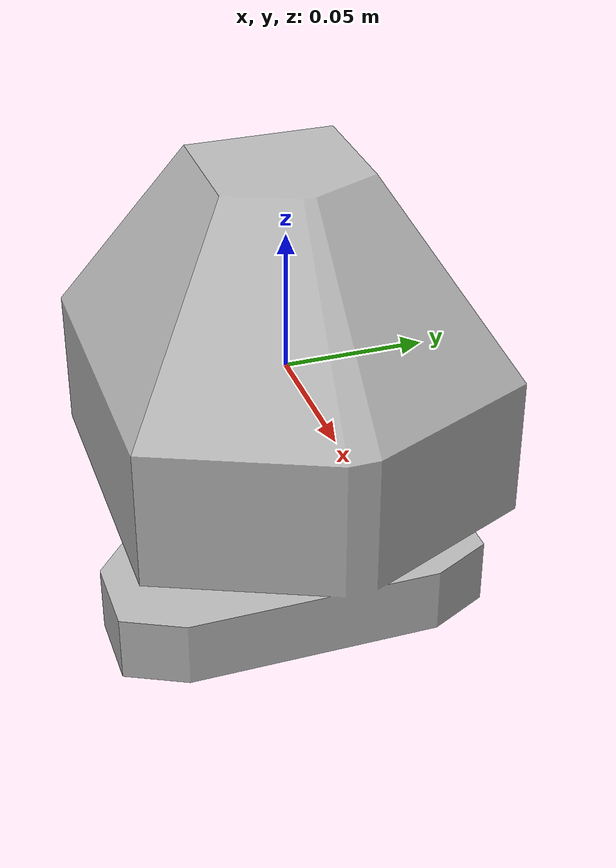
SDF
<?xml version="1.0" ?>
<sdf version="1.5">
  <model name="goomba">
    <static>true</static>
    <link name="link">
      <collision name="collision">
        <pose>0 0 0 0 0 0</pose>
        <geometry>
          <mesh>
            <scale>0.3 0.3 0.3</scale>
            <uri>meshes/collision.stl</uri>
          </mesh>
        </geometry>
      </collision>
      <visual name="visual">
        <pose>0 0 0 0 0 0</pose>
        <geometry>
          <mesh>
            <scale>0.3 0.3 0.3</scale>
            <uri>meshes/visual.dae</uri>
          </mesh>
        </geometry>
      </visual>
    </link>
  </model>
</sdf>
